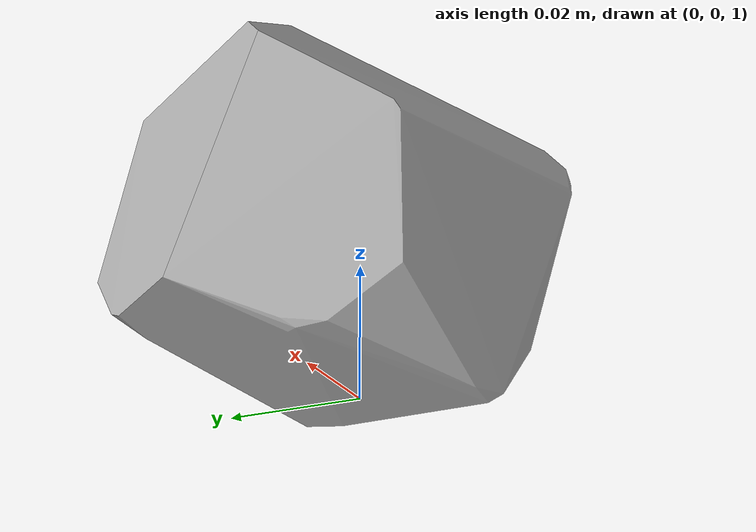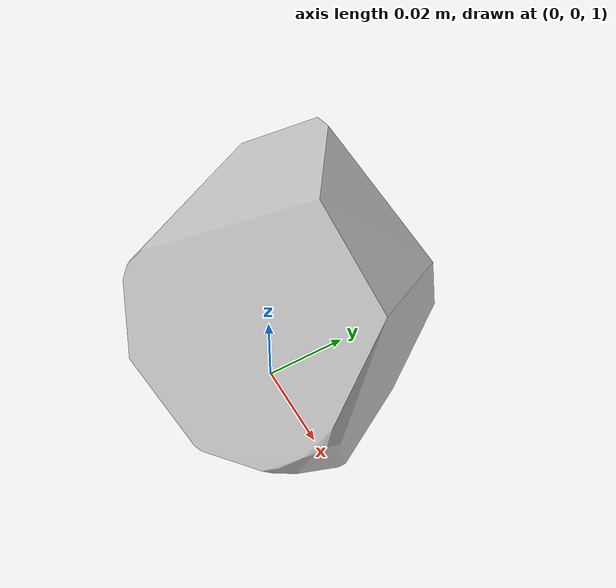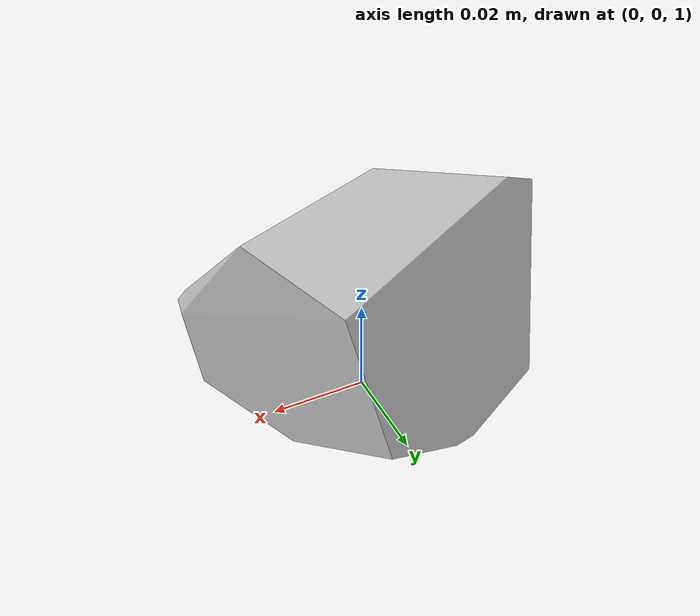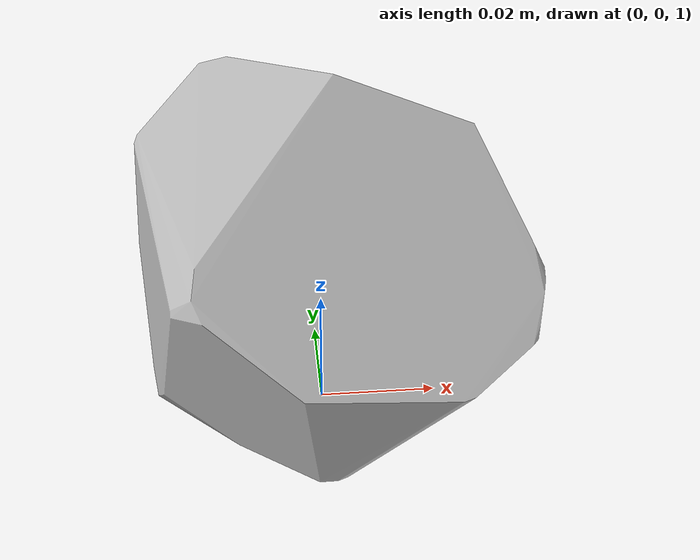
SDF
<?xml version='1.0'?>
<sdf version='1.5'>
  <model name="pebble2">
    <static>false</static>
    <pose>0 0 1 0 0 0</pose>
      <!-- ter1  change collision mass ineritia ...-->
      <link name="course">
        <pose>0 0 0 0 0 0</pose>

        <inertial>
          <pose>0 0 0 0 0 0</pose>
          <mass>0.1</mass>
          <inertia>
            <ixx>9.885e-1</ixx>
            <iyy>2.099e0</iyy>
            <izz>1.317e0</izz>
            <ixy>-7.521e-4</ixy>
            <ixz>1.126e-3</ixz>
            <iyz>6.915e-3</iyz>
          </inertia>
        </inertial>
        <visual name="visual">
          <geometry>
            <mesh>
              <uri>model://Pebble2/mesh/Pebble2.dae</uri>
            </mesh>
          </geometry>
        </visual>
        <collision name="collision">
          <geometry>
            <mesh>
              <uri>model://Pebble2/mesh/Pebble2.dae</uri>
            </mesh>
          </geometry>
        </collision>
      </link>
    </model>
</sdf>
